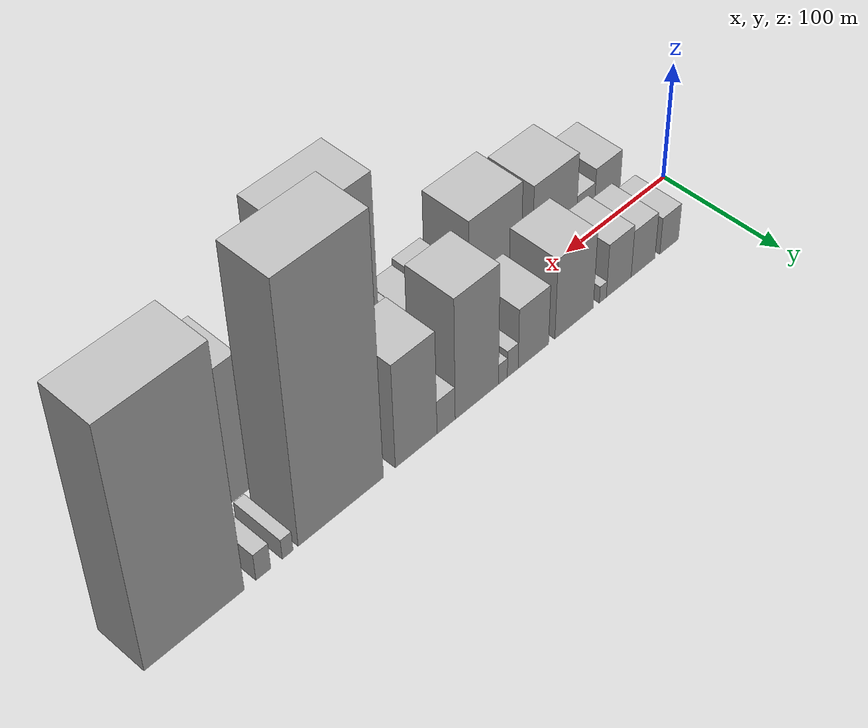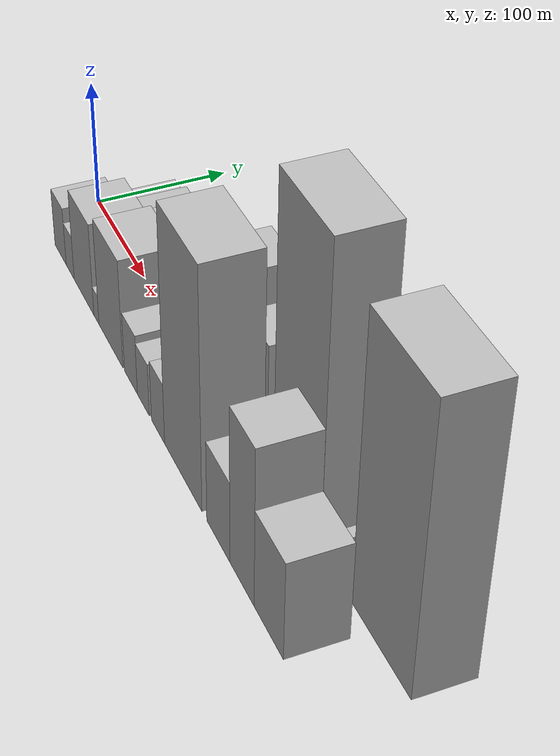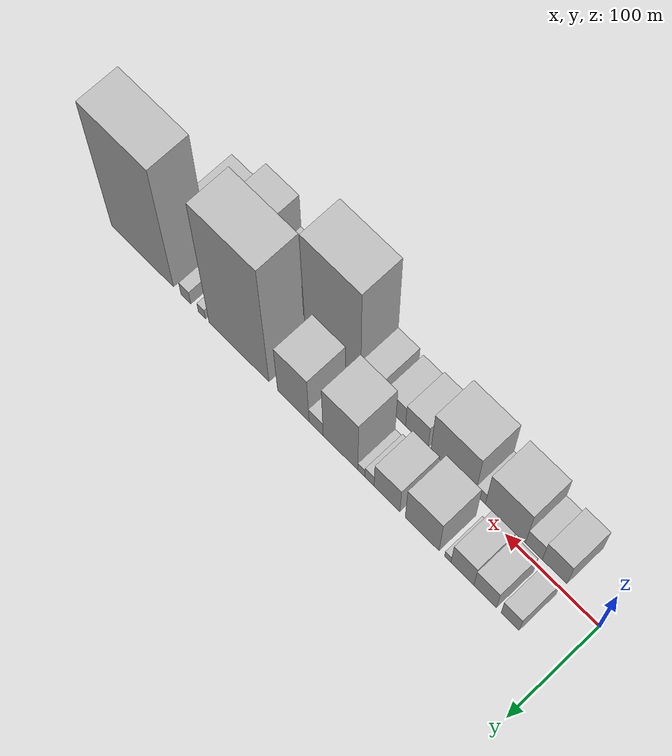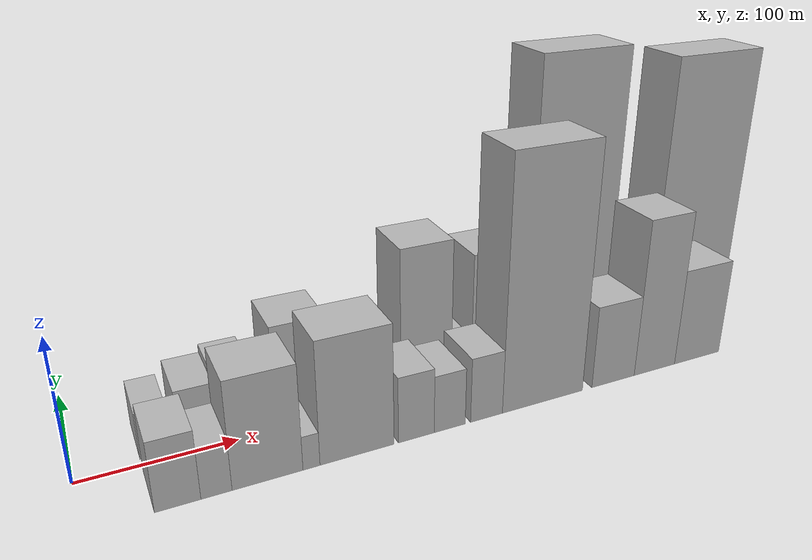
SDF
<sdf version="1.6">
 <world name="default">
  <scene>
   <sky><clouds><speed>12</speed></clouds></sky>
   <ambient>0.4 0.4 0.4 1</ambient>
   <background>0.7 0.7 0.7 1</background>
   <shadows>1</shadows>
  </scene>
  <gravity>0 0 -9.8066</gravity>
  <magnetic_field>6e-06 2.3e-05 -4.2e-05</magnetic_field>
  <physics default="0" name="default_physics" type="ode">
   <ode>
    <solver>
     <type>quick</type>
     <iters>10</iters>
     <sor>1.0</sor>
     <use_dynamic_moi_rescaling>0</use_dynamic_moi_rescaling>
    </solver>
    <constraints>
     <cfm>0</cfm>
     <erp>0.2</erp>
     <contact_max_correcting_vel>100</contact_max_correcting_vel>
     <contact_surface_layer>0.001</contact_surface_layer>
    </constraints>
   </ode>
   <max_step_size>0.004</max_step_size>
   <real_time_factor>1</real_time_factor>
   <real_time_update_rate>250</real_time_update_rate>
  </physics>
  <light name="sun" type="directional">
   <pose>0 0 10 0 0 0</pose>
   <diffuse>0.8 0.8 0.8 1</diffuse>
   <specular>0.2 0.2 0.2 1</specular>
   <attenuation>
    <range>1000</range>
    <constant>0.9</constant>
    <linear>0.01</linear>
    <quadratic>0.001</quadratic>
   </attenuation>
   <direction>-0.5 0.1 -0.9</direction>
  </light>
  <model name="building_1">
   <static>1</static>
   <pose>49.6204 26.0000 0 0.000000 0.000000 1.570796</pose>
   <link name="link">
    <pose>0 0 16.50 0 0 0</pose>
    <collision name="collision"><geometry><box><size>40.0000 19.2409 33.0000</size></box></geometry></collision>
    <visual name="visual">
     <cast_shadows>0</cast_shadows>
     <geometry><box><size>40.0000 19.2409 33.0000</size></box></geometry>
     <material>
      <script>
       <uri>model://HANNAS_wall/materials/scripts</uri>
       <uri>model://HANNAS_wall/materials/textures</uri>
       <name>vrc/HANNAS_wall</name>
      </script>
     </material>
    </visual>
   </link>
  </model>
  <model name="building_2">
   <static>1</static>
   <pose>76.3612 26.0000 0 0.000000 0.000000 1.570796</pose>
   <link name="link">
    <pose>0 0 21.00 0 0 0</pose>
    <collision name="collision"><geometry><box><size>40.0000 24.2407 42.0000</size></box></geometry></collision>
    <visual name="visual">
     <cast_shadows>0</cast_shadows>
     <geometry><box><size>40.0000 24.2407 42.0000</size></box></geometry>
     <material>
      <script>
       <uri>model://HANNAS_wall/materials/scripts</uri>
       <uri>model://HANNAS_wall/materials/textures</uri>
       <name>vrc/HANNAS_wall</name>
      </script>
     </material>
    </visual>
   </link>
  </model>
  <model name="building_3">
   <static>1</static>
   <pose>100.8569 26.0000 0 0.000000 0.000000 1.570796</pose>
   <link name="link">
    <pose>0 0 24.00 0 0 0</pose>
    <collision name="collision"><geometry><box><size>40.0000 24.7506 48.0000</size></box></geometry></collision>
    <visual name="visual">
     <cast_shadows>0</cast_shadows>
     <geometry><box><size>40.0000 24.7506 48.0000</size></box></geometry>
     <material>
      <script>
       <uri>model://HANNAS_wall/materials/scripts</uri>
       <uri>model://HANNAS_wall/materials/textures</uri>
       <name>vrc/HANNAS_wall</name>
      </script>
     </material>
    </visual>
   </link>
  </model>
  <model name="building_4">
   <static>1</static>
   <pose>116.6547 26.0000 0 0.000000 0.000000 1.570796</pose>
   <link name="link">
    <pose>0 0 7.50 0 0 0</pose>
    <collision name="collision"><geometry><box><size>40.0000 6.8449 15.0000</size></box></geometry></collision>
    <visual name="visual">
     <cast_shadows>0</cast_shadows>
     <geometry><box><size>40.0000 6.8449 15.0000</size></box></geometry>
     <material>
      <script>
       <uri>model://HANNAS_wall/materials/scripts</uri>
       <uri>model://HANNAS_wall/materials/textures</uri>
       <name>vrc/HANNAS_wall</name>
      </script>
     </material>
    </visual>
   </link>
  </model>
  <model name="building_5">
   <static>1</static>
   <pose>144.6019 26.0000 0 0.000000 0.000000 1.570796</pose>
   <link name="link">
    <pose>0 0 36.00 0 0 0</pose>
    <collision name="collision"><geometry><box><size>40.0000 37.0496 72.0000</size></box></geometry></collision>
    <visual name="visual">
     <cast_shadows>0</cast_shadows>
     <geometry><box><size>40.0000 37.0496 72.0000</size></box></geometry>
     <material>
      <script>
       <uri>model://HANNAS_wall/materials/scripts</uri>
       <uri>model://HANNAS_wall/materials/textures</uri>
       <name>vrc/HANNAS_wall</name>
      </script>
     </material>
    </visual>
   </link>
  </model>
  <model name="building_6">
   <static>1</static>
   <pose>183.3725 26.0000 0 0.000000 0.000000 1.570796</pose>
   <link name="link">
    <pose>0 0 27.00 0 0 0</pose>
    <collision name="collision"><geometry><box><size>40.0000 28.4916 54.0000</size></box></geometry></collision>
    <visual name="visual">
     <cast_shadows>0</cast_shadows>
     <geometry><box><size>40.0000 28.4916 54.0000</size></box></geometry>
     <material>
      <script>
       <uri>model://HANNAS_wall/materials/scripts</uri>
       <uri>model://HANNAS_wall/materials/textures</uri>
       <name>vrc/HANNAS_wall</name>
      </script>
     </material>
    </visual>
   </link>
  </model>
  <model name="building_7">
   <static>1</static>
   <pose>202.6244 26.0000 0 0.000000 0.000000 1.570796</pose>
   <link name="link">
    <pose>0 0 12.00 0 0 0</pose>
    <collision name="collision"><geometry><box><size>40.0000 10.0121 24.0000</size></box></geometry></collision>
    <visual name="visual">
     <cast_shadows>0</cast_shadows>
     <geometry><box><size>40.0000 10.0121 24.0000</size></box></geometry>
     <material>
      <script>
       <uri>model://HANNAS_wall/materials/scripts</uri>
       <uri>model://HANNAS_wall/materials/textures</uri>
       <name>vrc/HANNAS_wall</name>
      </script>
     </material>
    </visual>
   </link>
  </model>
  <model name="building_8">
   <static>1</static>
   <pose>211.6649 26.0000 0 0.000000 0.000000 1.570796</pose>
   <link name="link">
    <pose>0 0 9.00 0 0 0</pose>
    <collision name="collision"><geometry><box><size>40.0000 8.0690 18.0000</size></box></geometry></collision>
    <visual name="visual">
     <cast_shadows>0</cast_shadows>
     <geometry><box><size>40.0000 8.0690 18.0000</size></box></geometry>
     <material>
      <script>
       <uri>model://HANNAS_wall/materials/scripts</uri>
       <uri>model://HANNAS_wall/materials/textures</uri>
       <name>vrc/HANNAS_wall</name>
      </script>
     </material>
    </visual>
   </link>
  </model>
  <model name="building_9">
   <static>1</static>
   <pose>235.2470 26.0000 0 0.000000 0.000000 1.570796</pose>
   <link name="link">
    <pose>0 0 54.00 0 0 0</pose>
    <collision name="collision"><geometry><box><size>40.0000 39.0953 108.0000</size></box></geometry></collision>
    <visual name="visual">
     <cast_shadows>0</cast_shadows>
     <geometry><box><size>40.0000 39.0953 108.0000</size></box></geometry>
     <material>
      <script>
       <uri>model://HANNAS_wall/materials/scripts</uri>
       <uri>model://HANNAS_wall/materials/textures</uri>
       <name>vrc/HANNAS_wall</name>
      </script>
     </material>
    </visual>
   </link>
  </model>
  <model name="building_10">
   <static>1</static>
   <pose>262.7934 26.0000 0 0.000000 0.000000 1.570796</pose>
   <link name="link">
    <pose>0 0 15.00 0 0 0</pose>
    <collision name="collision"><geometry><box><size>40.0000 15.9974 30.0000</size></box></geometry></collision>
    <visual name="visual">
     <cast_shadows>0</cast_shadows>
     <geometry><box><size>40.0000 15.9974 30.0000</size></box></geometry>
     <material>
      <script>
       <uri>model://HANNAS_wall/materials/scripts</uri>
       <uri>model://HANNAS_wall/materials/textures</uri>
       <name>vrc/HANNAS_wall</name>
      </script>
     </material>
    </visual>
   </link>
  </model>
  <model name="building_11">
   <static>1</static>
   <pose>288.8255 26.0000 0 0.000000 0.000000 1.570796</pose>
   <link name="link">
    <pose>0 0 46.50 0 0 0</pose>
    <collision name="collision"><geometry><box><size>40.0000 36.0668 93.0000</size></box></geometry></collision>
    <visual name="visual">
     <cast_shadows>0</cast_shadows>
     <geometry><box><size>40.0000 36.0668 93.0000</size></box></geometry>
     <material>
      <script>
       <uri>model://HANNAS_wall/materials/scripts</uri>
       <uri>model://HANNAS_wall/materials/textures</uri>
       <name>vrc/HANNAS_wall</name>
      </script>
     </material>
    </visual>
   </link>
  </model>
  <model name="building_12">
   <static>1</static>
   <pose>351.8852 26.0000 0 0.000000 0.000000 1.570796</pose>
   <link name="link">
    <pose>0 0 112.50 0 0 0</pose>
    <collision name="collision"><geometry><box><size>40.0000 70.0525 225.0000</size></box></geometry></collision>
    <visual name="visual">
     <cast_shadows>0</cast_shadows>
     <geometry><box><size>40.0000 70.0525 225.0000</size></box></geometry>
     <material>
      <script>
       <uri>model://HANNAS_wall/materials/scripts</uri>
       <uri>model://HANNAS_wall/materials/textures</uri>
       <name>vrc/HANNAS_wall</name>
      </script>
     </material>
    </visual>
   </link>
  </model>
  <model name="building_13">
   <static>1</static>
   <pose>395.2271 26.0000 0 0.000000 0.000000 1.570796</pose>
   <link name="link">
    <pose>0 0 9.00 0 0 0</pose>
    <collision name="collision"><geometry><box><size>40.0000 8.6315 18.0000</size></box></geometry></collision>
    <visual name="visual">
     <cast_shadows>0</cast_shadows>
     <geometry><box><size>40.0000 8.6315 18.0000</size></box></geometry>
     <material>
      <script>
       <uri>model://HANNAS_wall/materials/scripts</uri>
       <uri>model://HANNAS_wall/materials/textures</uri>
       <name>vrc/HANNAS_wall</name>
      </script>
     </material>
    </visual>
   </link>
  </model>
  <model name="building_14">
   <static>1</static>
   <pose>414.3450 26.0000 0 0.000000 0.000000 1.570796</pose>
   <link name="link">
    <pose>0 0 12.00 0 0 0</pose>
    <collision name="collision"><geometry><box><size>40.0000 11.6042 24.0000</size></box></geometry></collision>
    <visual name="visual">
     <cast_shadows>0</cast_shadows>
     <geometry><box><size>40.0000 11.6042 24.0000</size></box></geometry>
     <material>
      <script>
       <uri>model://HANNAS_wall/materials/scripts</uri>
       <uri>model://HANNAS_wall/materials/textures</uri>
       <name>vrc/HANNAS_wall</name>
      </script>
     </material>
    </visual>
   </link>
  </model>
  <model name="building_15">
   <static>1</static>
   <pose>466.5660 26.0000 0 0.000000 0.000000 1.570796</pose>
   <link name="link">
    <pose>0 0 106.50 0 0 0</pose>
    <collision name="collision"><geometry><box><size>40.0000 74.8378 213.0000</size></box></geometry></collision>
    <visual name="visual">
     <cast_shadows>0</cast_shadows>
     <geometry><box><size>40.0000 74.8378 213.0000</size></box></geometry>
     <material>
      <script>
       <uri>model://HANNAS_wall/materials/scripts</uri>
       <uri>model://HANNAS_wall/materials/textures</uri>
       <name>vrc/HANNAS_wall</name>
      </script>
     </material>
    </visual>
   </link>
  </model>
  <model name="building_16">
   <static>1</static>
   <pose>53.1173 -26.0000 0 0.000000 0.000000 1.570796</pose>
   <link name="link">
    <pose>0 0 24.00 0 0 0</pose>
    <collision name="collision"><geometry><box><size>40.0000 26.2346 48.0000</size></box></geometry></collision>
    <visual name="visual">
     <cast_shadows>0</cast_shadows>
     <geometry><box><size>40.0000 26.2346 48.0000</size></box></geometry>
     <material>
      <script>
       <uri>model://HANNAS_wall/materials/scripts</uri>
       <uri>model://HANNAS_wall/materials/textures</uri>
       <name>vrc/HANNAS_wall</name>
      </script>
     </material>
    </visual>
   </link>
  </model>
  <model name="building_17">
   <static>1</static>
   <pose>75.3128 -26.0000 0 0.000000 0.000000 1.570796</pose>
   <link name="link">
    <pose>0 0 18.00 0 0 0</pose>
    <collision name="collision"><geometry><box><size>40.0000 18.1565 36.0000</size></box></geometry></collision>
    <visual name="visual">
     <cast_shadows>0</cast_shadows>
     <geometry><box><size>40.0000 18.1565 36.0000</size></box></geometry>
     <material>
      <script>
       <uri>model://HANNAS_wall/materials/scripts</uri>
       <uri>model://HANNAS_wall/materials/textures</uri>
       <name>vrc/HANNAS_wall</name>
      </script>
     </material>
    </visual>
   </link>
  </model>
  <model name="building_18">
   <static>1</static>
   <pose>106.0257 -26.0000 0 0.000000 0.000000 1.570796</pose>
   <link name="link">
    <pose>0 0 37.50 0 0 0</pose>
    <collision name="collision"><geometry><box><size>40.0000 43.2693 75.0000</size></box></geometry></collision>
    <visual name="visual">
     <cast_shadows>0</cast_shadows>
     <geometry><box><size>40.0000 43.2693 75.0000</size></box></geometry>
     <material>
      <script>
       <uri>model://HANNAS_wall/materials/scripts</uri>
       <uri>model://HANNAS_wall/materials/textures</uri>
       <name>vrc/HANNAS_wall</name>
      </script>
     </material>
    </visual>
   </link>
  </model>
  <model name="building_19">
   <static>1</static>
   <pose>133.0763 -26.0000 0 0.000000 0.000000 1.570796</pose>
   <link name="link">
    <pose>0 0 12.00 0 0 0</pose>
    <collision name="collision"><geometry><box><size>40.0000 10.8319 24.0000</size></box></geometry></collision>
    <visual name="visual">
     <cast_shadows>0</cast_shadows>
     <geometry><box><size>40.0000 10.8319 24.0000</size></box></geometry>
     <material>
      <script>
       <uri>model://HANNAS_wall/materials/scripts</uri>
       <uri>model://HANNAS_wall/materials/textures</uri>
       <name>vrc/HANNAS_wall</name>
      </script>
     </material>
    </visual>
   </link>
  </model>
  <model name="building_20">
   <static>1</static>
   <pose>163.0801 -26.0000 0 0.000000 0.000000 1.570796</pose>
   <link name="link">
    <pose>0 0 43.50 0 0 0</pose>
    <collision name="collision"><geometry><box><size>40.0000 49.1758 87.0000</size></box></geometry></collision>
    <visual name="visual">
     <cast_shadows>0</cast_shadows>
     <geometry><box><size>40.0000 49.1758 87.0000</size></box></geometry>
     <material>
      <script>
       <uri>model://HANNAS_wall/materials/scripts</uri>
       <uri>model://HANNAS_wall/materials/textures</uri>
       <name>vrc/HANNAS_wall</name>
      </script>
     </material>
    </visual>
   </link>
  </model>
  <model name="building_21">
   <static>1</static>
   <pose>203.2652 -26.0000 0 0.000000 0.000000 1.570796</pose>
   <link name="link">
    <pose>0 0 24.00 0 0 0</pose>
    <collision name="collision"><geometry><box><size>40.0000 25.1944 48.0000</size></box></geometry></collision>
    <visual name="visual">
     <cast_shadows>0</cast_shadows>
     <geometry><box><size>40.0000 25.1944 48.0000</size></box></geometry>
     <material>
      <script>
       <uri>model://HANNAS_wall/materials/scripts</uri>
       <uri>model://HANNAS_wall/materials/textures</uri>
       <name>vrc/HANNAS_wall</name>
      </script>
     </material>
    </visual>
   </link>
  </model>
  <model name="building_22">
   <static>1</static>
   <pose>227.1157 -26.0000 0 0.000000 0.000000 1.570796</pose>
   <link name="link">
    <pose>0 0 21.00 0 0 0</pose>
    <collision name="collision"><geometry><box><size>40.0000 22.5067 42.0000</size></box></geometry></collision>
    <visual name="visual">
     <cast_shadows>0</cast_shadows>
     <geometry><box><size>40.0000 22.5067 42.0000</size></box></geometry>
     <material>
      <script>
       <uri>model://HANNAS_wall/materials/scripts</uri>
       <uri>model://HANNAS_wall/materials/textures</uri>
       <name>vrc/HANNAS_wall</name>
      </script>
     </material>
    </visual>
   </link>
  </model>
  <model name="building_23">
   <static>1</static>
   <pose>254.3784 -26.0000 0 0.000000 0.000000 1.570796</pose>
   <link name="link">
    <pose>0 0 24.00 0 0 0</pose>
    <collision name="collision"><geometry><box><size>40.0000 24.0185 48.0000</size></box></geometry></collision>
    <visual name="visual">
     <cast_shadows>0</cast_shadows>
     <geometry><box><size>40.0000 24.0185 48.0000</size></box></geometry>
     <material>
      <script>
       <uri>model://HANNAS_wall/materials/scripts</uri>
       <uri>model://HANNAS_wall/materials/textures</uri>
       <name>vrc/HANNAS_wall</name>
      </script>
     </material>
    </visual>
   </link>
  </model>
  <model name="building_24">
   <static>1</static>
   <pose>298.4039 -26.0000 0 0.000000 0.000000 1.570796</pose>
   <link name="link">
    <pose>0 0 91.50 0 0 0</pose>
    <collision name="collision"><geometry><box><size>40.0000 64.0326 183.0000</size></box></geometry></collision>
    <visual name="visual">
     <cast_shadows>0</cast_shadows>
     <geometry><box><size>40.0000 64.0326 183.0000</size></box></geometry>
     <material>
      <script>
       <uri>model://HANNAS_wall/materials/scripts</uri>
       <uri>model://HANNAS_wall/materials/textures</uri>
       <name>vrc/HANNAS_wall</name>
      </script>
     </material>
    </visual>
   </link>
  </model>
  <model name="building_25">
   <static>1</static>
   <pose>356.6810 -26.0000 0 0.000000 0.000000 1.570796</pose>
   <link name="link">
    <pose>0 0 31.50 0 0 0</pose>
    <collision name="collision"><geometry><box><size>40.0000 36.5215 63.0000</size></box></geometry></collision>
    <visual name="visual">
     <cast_shadows>0</cast_shadows>
     <geometry><box><size>40.0000 36.5215 63.0000</size></box></geometry>
     <material>
      <script>
       <uri>model://HANNAS_wall/materials/scripts</uri>
       <uri>model://HANNAS_wall/materials/textures</uri>
       <name>vrc/HANNAS_wall</name>
      </script>
     </material>
    </visual>
   </link>
  </model>
  <model name="building_26">
   <static>1</static>
   <pose>393.1752 -26.0000 0 0.000000 0.000000 1.570796</pose>
   <link name="link">
    <pose>0 0 60.00 0 0 0</pose>
    <collision name="collision"><geometry><box><size>40.0000 36.4668 120.0000</size></box></geometry></collision>
    <visual name="visual">
     <cast_shadows>0</cast_shadows>
     <geometry><box><size>40.0000 36.4668 120.0000</size></box></geometry>
     <material>
      <script>
       <uri>model://HANNAS_wall/materials/scripts</uri>
       <uri>model://HANNAS_wall/materials/textures</uri>
       <name>vrc/HANNAS_wall</name>
      </script>
     </material>
    </visual>
   </link>
  </model>
  <model name="building_27">
   <static>1</static>
   <pose>432.2530 -26.0000 0 0.000000 0.000000 1.570796</pose>
   <link name="link">
    <pose>0 0 37.50 0 0 0</pose>
    <collision name="collision"><geometry><box><size>40.0000 41.6888 75.0000</size></box></geometry></collision>
    <visual name="visual">
     <cast_shadows>0</cast_shadows>
     <geometry><box><size>40.0000 41.6888 75.0000</size></box></geometry>
     <material>
      <script>
       <uri>model://HANNAS_wall/materials/scripts</uri>
       <uri>model://HANNAS_wall/materials/textures</uri>
       <name>vrc/HANNAS_wall</name>
      </script>
     </material>
    </visual>
   </link>
  </model>
 </world>
</sdf>
